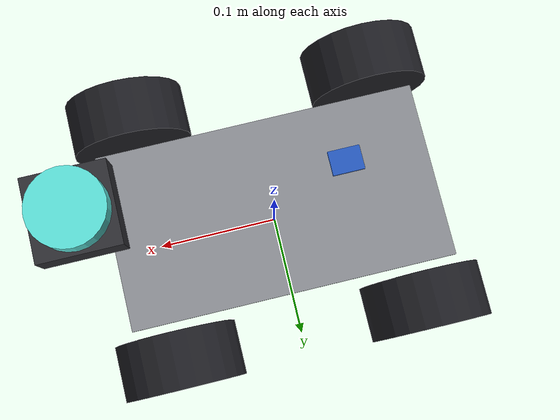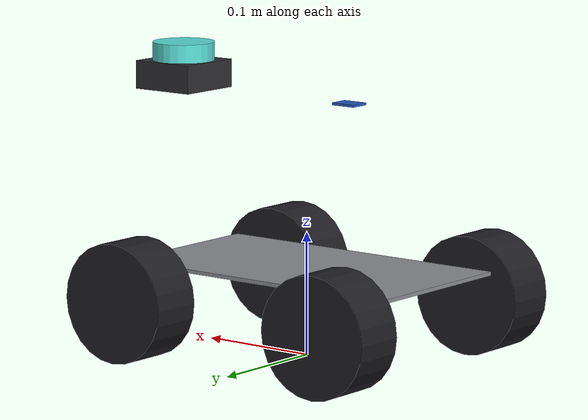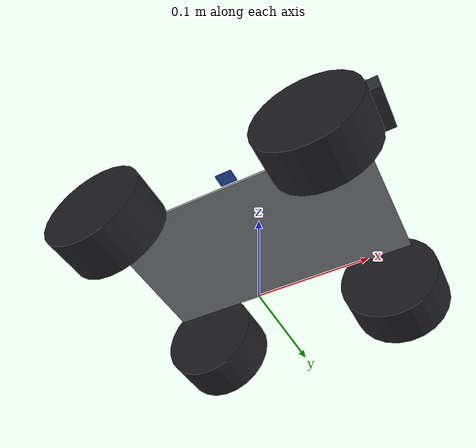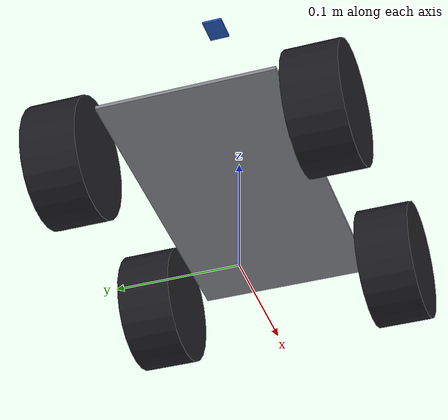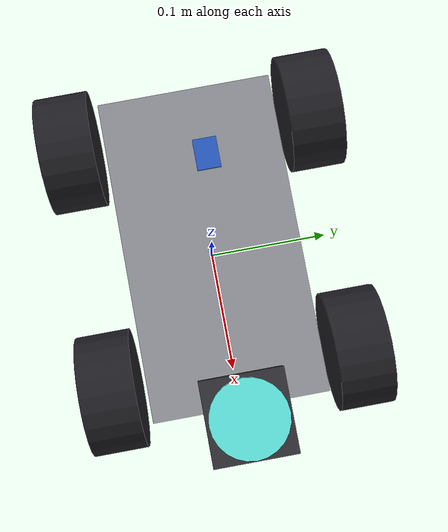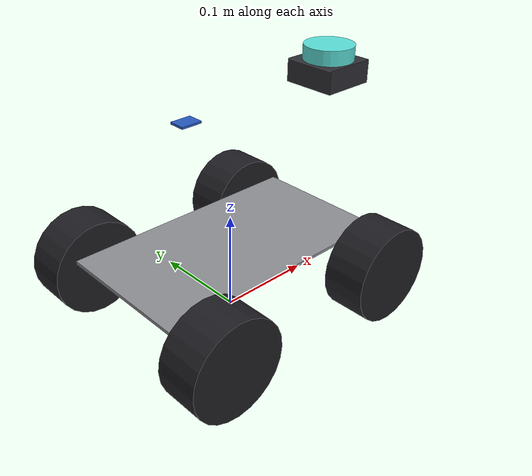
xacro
<?xml version="1.0"?>
<robot name="mecanum_robot" xmlns:xacro="http://www.ros.org/wiki/xacro">

<!-- Simulation-only content (Gazebo drive plugin, sensors later).
       Kept in a separate file; this is a stand-in for the real STM32
       motor control and only matters inside Gazebo. -->
  <xacro:include filename="$(find mecanum_description)/urdf/mecanum_robot.gazebo.xacro"/>

  <xacro:macro name="box_inertial" params="mass x y z *origin">
    <inertial>
      <xacro:insert_block name="origin"/>
      <mass value="${mass}"/>
      <inertia
        ixx="${(1/12) * mass * (y*y + z*z)}"
        iyy="${(1/12) * mass * (x*x + z*z)}"
        izz="${(1/12) * mass * (x*x + y*y)}"
        ixy="0" ixz="0" iyz="0"/>
    </inertial>
  </xacro:macro>

  <xacro:macro name="cylinder_inertial" params="mass radius length *origin">
    <inertial>
      <xacro:insert_block name="origin"/>
      <mass value="${mass}"/>
      <inertia
        ixx="${(1/12) * mass * (3*radius*radius + length*length)}"
        iyy="${(1/12) * mass * (3*radius*radius + length*length)}"
        izz="${(1/2) * mass * radius*radius}"
        ixy="0" ixz="0" iyz="0"/>
    </inertial>
  </xacro:macro>

  <!-- Station 3: wheels -->
  <xacro:property name="wheel_radius_geom" value="0.0484"/>
  <xacro:property name="wheel_width"       value="0.0435"/>
  <xacro:property name="lx" value="0.100"/>
  <xacro:property name="ly" value="0.100"/>

  <!-- Station 4: frame -->
  <xacro:property name="frame_length"    value="0.259"/>
  <xacro:property name="frame_width"     value="0.141"/>
  <xacro:property name="frame_thickness" value="0.00305"/>
  <xacro:property name="frame_bottom_z"  value="0.070"/>

  <!-- Station 5: lidar. Scan axis = midpoint of the cylindrical body.
       0.190(Deck2) + 0.015(standoff) + 0.023(base) + half of 0.015(cyl) = 0.2355 -->
  <xacro:property name="lidar_base_length" value="0.055"/>
  <xacro:property name="lidar_base_width"  value="0.055"/>
  <xacro:property name="lidar_base_height" value="0.023"/>
  <xacro:property name="lidar_cyl_radius"  value="0.0253"/>
  <xacro:property name="lidar_cyl_height"  value="0.015"/>
  <xacro:property name="lidar_cyl_half_height" value="0.0075"/>
  <xacro:property name="lidar_x" value="0.1275"/>
  <xacro:property name="lidar_y" value="0.0"/>
  <xacro:property name="lidar_z" value="0.2355"/>

  <!-- Station 6: IMU -->
  <xacro:property name="imu_x" value="-0.046"/>
  <xacro:property name="imu_y" value="0.005"/>
  <xacro:property name="imu_z" value="0.2084"/>
  <xacro:property name="imu_yaw" value="${pi}"/>
  <xacro:property name="imu_board_x" value="0.021"/>
  <xacro:property name="imu_board_y" value="0.016"/>
  <xacro:property name="imu_board_z" value="0.002"/>

  <!-- Derived convenience values (not new measurements) -->
  <xacro:property name="frame_centre_z"
    value="${frame_bottom_z + frame_thickness/2}"/>
  <xacro:property name="lidar_base_offset_z"
    value="${-(lidar_cyl_half_height + lidar_base_height/2)}"/>

  <material name="frame_grey"><color rgba="0.55 0.56 0.58 1.0"/></material>
  <material name="wheel_black"><color rgba="0.12 0.12 0.14 1.0"/></material>
  <material name="lidar_black"><color rgba="0.18 0.18 0.20 1.0"/></material>
  <material name="lidar_teal"><color rgba="0.36 0.88 0.85 1.0"/></material>
  <material name="imu_blue"><color rgba="0.15 0.35 0.75 1.0"/></material>

<link name="base_link">
    <visual>
      <origin xyz="0 0 ${frame_centre_z}" rpy="0 0 0"/>
      <geometry><box size="${frame_length} ${frame_width} ${frame_thickness}"/></geometry>
      <material name="frame_grey"/>
    </visual>
    <collision>
      <origin xyz="0 0 ${frame_centre_z}" rpy="0 0 0"/>
      <geometry><box size="${frame_length} ${frame_width} ${frame_thickness}"/></geometry>
    </collision>
    <xacro:box_inertial mass="3.0" x="${frame_length}" y="${frame_width}" z="0.13">
      <origin xyz="0 0 0.135" rpy="0 0 0"/>
    </xacro:box_inertial>
  </link>

<xacro:macro name="mecanum_wheel" params="prefix x_sign y_sign">
    <link name="${prefix}_wheel_link">
      <visual>
        <origin xyz="0 0 0" rpy="${pi/2} 0 0"/>
        <geometry><cylinder radius="${wheel_radius_geom}" length="${wheel_width}"/></geometry>
        <material name="wheel_black"/>
      </visual>
      <collision>
        <origin xyz="0 0 0" rpy="${pi/2} 0 0"/>
        <geometry><cylinder radius="${wheel_radius_geom}" length="${wheel_width}"/></geometry>
      </collision>
      <xacro:cylinder_inertial mass="0.08" radius="${wheel_radius_geom}" length="${wheel_width}">
        <origin xyz="0 0 0" rpy="${pi/2} 0 0"/>
      </xacro:cylinder_inertial>
    </link>
    <joint name="${prefix}_wheel_joint" type="continuous">
      <parent link="base_link"/>
      <child link="${prefix}_wheel_link"/>
      <origin xyz="${x_sign * lx} ${y_sign * ly} ${wheel_radius_geom}" rpy="0 0 0"/>
      <axis xyz="0 1 0"/>
    </joint>
  </xacro:macro>

  <xacro:mecanum_wheel prefix="front_left"  x_sign="1"  y_sign="1"/>
  <xacro:mecanum_wheel prefix="front_right" x_sign="1"  y_sign="-1"/>
  <xacro:mecanum_wheel prefix="rear_left"   x_sign="-1" y_sign="1"/>
  <xacro:mecanum_wheel prefix="rear_right"  x_sign="-1" y_sign="-1"/>

  <link name="lidar_link">
    <visual>
      <origin xyz="0 0 0" rpy="0 0 0"/>
      <geometry><cylinder radius="${lidar_cyl_radius}" length="${lidar_cyl_height}"/></geometry>
      <material name="lidar_teal"/>
    </visual>
    <visual>
      <origin xyz="0 0 ${lidar_base_offset_z}" rpy="0 0 0"/>
      <geometry><box size="${lidar_base_length} ${lidar_base_width} ${lidar_base_height}"/></geometry>
      <material name="lidar_black"/>
    </visual>
    <collision>
      <origin xyz="0 0 ${lidar_base_offset_z}" rpy="0 0 0"/>
      <geometry><box size="${lidar_base_length} ${lidar_base_width} ${lidar_base_height}"/></geometry>
    </collision>
    <xacro:box_inertial mass="0.01" x="${lidar_base_length}" y="${lidar_base_width}" z="${lidar_base_height}">
      <origin xyz="0 0 0" rpy="0 0 0"/>
    </xacro:box_inertial>
  </link>
  <joint name="lidar_joint" type="fixed">
    <parent link="base_link"/>
    <child link="lidar_link"/>
    <origin xyz="${lidar_x} ${lidar_y} ${lidar_z}" rpy="0 0 0"/>
  </joint>

  <link name="imu_link">
    <visual>
      <origin xyz="0 0 0" rpy="0 0 0"/>
      <geometry><box size="${imu_board_x} ${imu_board_y} ${imu_board_z}"/></geometry>
      <material name="imu_blue"/>
    </visual>
    <collision>
      <origin xyz="0 0 0" rpy="0 0 0"/>
      <geometry><box size="${imu_board_x} ${imu_board_y} ${imu_board_z}"/></geometry>
    </collision>
    <xacro:box_inertial mass="0.01" x="${imu_board_x}" y="${imu_board_y}" z="${imu_board_z}">
      <origin xyz="0 0 0" rpy="0 0 0"/>
    </xacro:box_inertial>
  </link>
  <joint name="imu_joint" type="fixed">
    <parent link="base_link"/>
    <child link="imu_link"/>
    <origin xyz="${imu_x} ${imu_y} ${imu_z}" rpy="0 0 ${imu_yaw}"/>
  </joint>

</robot>
